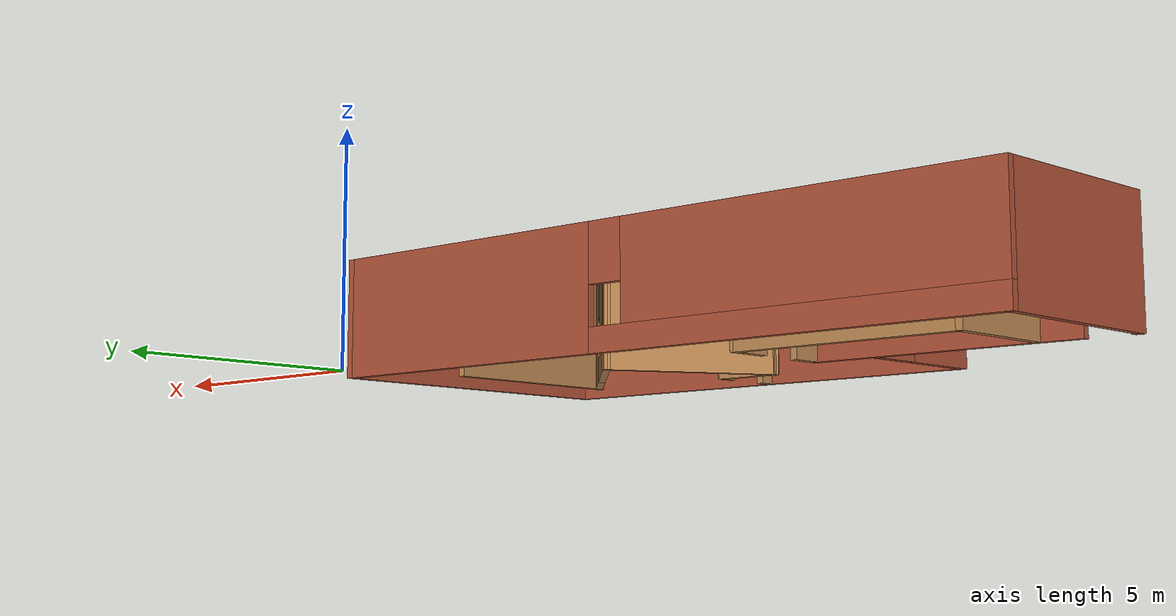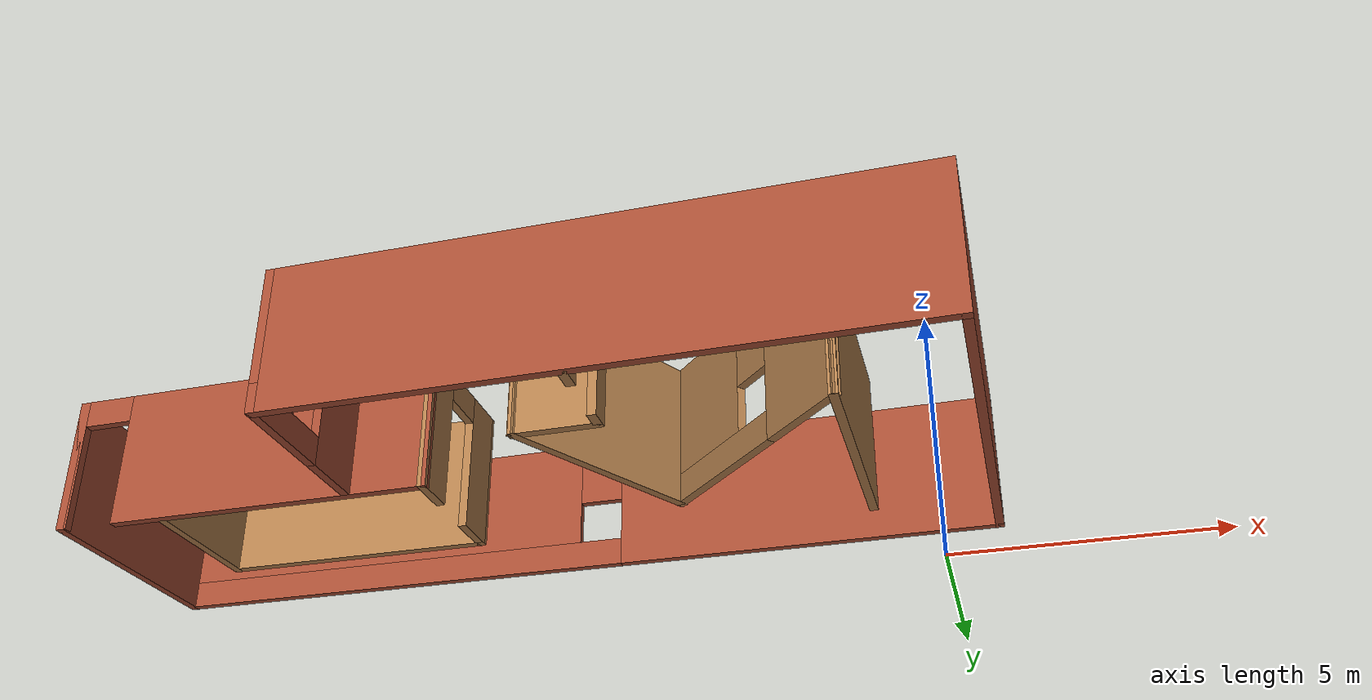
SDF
<?xml version='1.0'?>
<sdf version='1.6'>
  <model name='house'>
    <pose frame=''>-6.8963 -4.67451 0 0 -0 0</pose>
    <link name='Wall_1'>
      <pose frame=''>-2.425 -2.125 0 0 -0 -1.5708</pose>
      <visual name='Wall_1_Visual_0'>
        <pose frame=''>-0.924394 0 1.25 0 -0 0</pose>
        <geometry>
          <box>
            <size>1.15121 0.15 2.5</size>
          </box>
        </geometry>
        <material>
          <script>
            <uri>file://media/materials/scripts/gazebo.material</uri>
            <name>Gazebo/Bricks</name>
          </script>
          <ambient>1 1 1 1</ambient>
        </material>
        <meta>
          <layer>0</layer>
        </meta>
      </visual>
      <collision name='Wall_1_Collision_0'>
        <geometry>
          <box>
            <size>1.15121 0.15 2.5</size>
          </box>
        </geometry>
        <pose frame=''>-0.924394 0 1.25 0 -0 0</pose>
      </collision>
      <visual name='Wall_1_Visual_1'>
        <pose frame=''>0.575606 0 0.25 0 -0 0</pose>
        <geometry>
          <box>
            <size>1.84879 0.15 0.5</size>
          </box>
        </geometry>
        <material>
          <script>
            <uri>file://media/materials/scripts/gazebo.material</uri>
            <name>Gazebo/Bricks</name>
          </script>
          <ambient>1 1 1 1</ambient>
        </material>
        <meta>
          <layer>0</layer>
        </meta>
      </visual>
      <collision name='Wall_1_Collision_1'>
        <geometry>
          <box>
            <size>1.84879 0.15 0.5</size>
          </box>
        </geometry>
        <pose frame=''>0.575606 0 0.25 0 -0 0</pose>
      </collision>
      <visual name='Wall_1_Visual_2'>
        <pose frame=''>0.975606 0 1.5 0 -0 0</pose>
        <geometry>
          <box>
            <size>1.04879 0.15 2</size>
          </box>
        </geometry>
        <material>
          <script>
            <uri>file://media/materials/scripts/gazebo.material</uri>
            <name>Gazebo/Bricks</name>
          </script>
          <ambient>1 1 1 1</ambient>
        </material>
        <meta>
          <layer>0</layer>
        </meta>
      </visual>
      <collision name='Wall_1_Collision_2'>
        <geometry>
          <box>
            <size>1.04879 0.15 2</size>
          </box>
        </geometry>
        <pose frame=''>0.975606 0 1.5 0 -0 0</pose>
      </collision>
      <visual name='Wall_1_Visual_3'>
        <pose frame=''>0.051212 0 1.9 0 -0 0</pose>
        <geometry>
          <box>
            <size>0.8 0.15 1.2</size>
          </box>
        </geometry>
        <material>
          <script>
            <uri>file://media/materials/scripts/gazebo.material</uri>
            <name>Gazebo/Bricks</name>
          </script>
          <ambient>1 1 1 1</ambient>
        </material>
        <meta>
          <layer>0</layer>
        </meta>
      </visual>
      <collision name='Wall_1_Collision_3'>
        <geometry>
          <box>
            <size>0.8 0.15 1.2</size>
          </box>
        </geometry>
        <pose frame=''>0.051212 0 1.9 0 -0 0</pose>
      </collision>
    </link>
    <link name='Wall_13'>
      <pose frame=''>-1.07695 0.690857 0 0 -0 -1.56922</pose>
      <visual name='Wall_13_Visual_0'>
        <pose frame=''>-0.852217 0 1.25 0 -0 0</pose>
        <geometry>
          <box>
            <size>0.927282 0.15 2.5</size>
          </box>
        </geometry>
        <material>
          <script>
            <uri>file://media/materials/scripts/gazebo.material</uri>
            <name>Gazebo/Wood</name>
          </script>
          <ambient>1 1 1 1</ambient>
        </material>
        <meta>
          <layer>0</layer>
        </meta>
      </visual>
      <collision name='Wall_13_Collision_0'>
        <geometry>
          <box>
            <size>0.927282 0.15 2.5</size>
          </box>
        </geometry>
        <pose frame=''>-0.852217 0 1.25 0 -0 0</pose>
      </collision>
      <visual name='Wall_13_Visual_1'>
        <pose frame=''>0.913641 0 1.25 0 -0 0</pose>
        <geometry>
          <box>
            <size>0.804435 0.15 2.5</size>
          </box>
        </geometry>
        <material>
          <script>
            <uri>file://media/materials/scripts/gazebo.material</uri>
            <name>Gazebo/Wood</name>
          </script>
          <ambient>1 1 1 1</ambient>
        </material>
        <meta>
          <layer>0</layer>
        </meta>
      </visual>
      <collision name='Wall_13_Collision_1'>
        <geometry>
          <box>
            <size>0.804435 0.15 2.5</size>
          </box>
        </geometry>
        <pose frame=''>0.913641 0 1.25 0 -0 0</pose>
      </collision>
      <visual name='Wall_13_Visual_2'>
        <pose frame=''>0.061424 0 2.25 0 -0 0</pose>
        <geometry>
          <box>
            <size>0.9 0.15 0.5</size>
          </box>
        </geometry>
        <material>
          <script>
            <uri>file://media/materials/scripts/gazebo.material</uri>
            <name>Gazebo/Wood</name>
          </script>
          <ambient>1 1 1 1</ambient>
        </material>
        <meta>
          <layer>0</layer>
        </meta>
      </visual>
      <collision name='Wall_13_Collision_2'>
        <geometry>
          <box>
            <size>0.9 0.15 0.5</size>
          </box>
        </geometry>
        <pose frame=''>0.061424 0 2.25 0 -0 0</pose>
      </collision>
    </link>
    <link name='Wall_15'>
      <collision name='Wall_15_Collision'>
        <geometry>
          <box>
            <size>4.25 0.15 2.5</size>
          </box>
        </geometry>
        <pose frame=''>0 0 1.25 0 -0 0</pose>
      </collision>
      <visual name='Wall_15_Visual'>
        <pose frame=''>0 0 1.25 0 -0 0</pose>
        <geometry>
          <box>
            <size>4.25 0.15 2.5</size>
          </box>
        </geometry>
        <material>
          <script>
            <uri>file://media/materials/scripts/gazebo.material</uri>
            <name>Gazebo/Wood</name>
          </script>
          <ambient>1 1 1 1</ambient>
        </material>
        <meta>
          <layer>0</layer>
        </meta>
      </visual>
      <pose frame=''>5.90972 0.188689 0 0 -0 -1.5708</pose>
    </link>
    <link name='Wall_16'>
      <pose frame=''>4.37176 -0.323354 0 0 -0 2.35619</pose>
      <visual name='Wall_16_Visual_0'>
        <pose frame=''>-1.39671 0 1.25 0 -0 0</pose>
        <geometry>
          <box>
            <size>1.70657 0.15 2.5</size>
          </box>
        </geometry>
        <material>
          <script>
            <uri>file://media/materials/scripts/gazebo.material</uri>
            <name>Gazebo/Wood</name>
          </script>
          <ambient>1 1 1 1</ambient>
        </material>
        <meta>
          <layer>0</layer>
        </meta>
      </visual>
      <collision name='Wall_16_Collision_0'>
        <geometry>
          <box>
            <size>1.70657 0.15 2.5</size>
          </box>
        </geometry>
        <pose frame=''>-1.39671 0 1.25 0 -0 0</pose>
      </collision>
      <visual name='Wall_16_Visual_1'>
        <pose frame=''>0.853285 0 0.25 0 -0 0</pose>
        <geometry>
          <box>
            <size>2.79343 0.15 0.5</size>
          </box>
        </geometry>
        <material>
          <script>
            <uri>file://media/materials/scripts/gazebo.material</uri>
            <name>Gazebo/Wood</name>
          </script>
          <ambient>1 1 1 1</ambient>
        </material>
        <meta>
          <layer>0</layer>
        </meta>
      </visual>
      <collision name='Wall_16_Collision_1'>
        <geometry>
          <box>
            <size>2.79343 0.15 0.5</size>
          </box>
        </geometry>
        <pose frame=''>0.853285 0 0.25 0 -0 0</pose>
      </collision>
      <visual name='Wall_16_Visual_2'>
        <pose frame=''>1.25328 0 1.5 0 -0 0</pose>
        <geometry>
          <box>
            <size>1.99343 0.15 2</size>
          </box>
        </geometry>
        <material>
          <script>
            <uri>file://media/materials/scripts/gazebo.material</uri>
            <name>Gazebo/Wood</name>
          </script>
          <ambient>1 1 1 1</ambient>
        </material>
        <meta>
          <layer>0</layer>
        </meta>
      </visual>
      <collision name='Wall_16_Collision_2'>
        <geometry>
          <box>
            <size>1.99343 0.15 2</size>
          </box>
        </geometry>
        <pose frame=''>1.25328 0 1.5 0 -0 0</pose>
      </collision>
      <visual name='Wall_16_Visual_3'>
        <pose frame=''>-0.143431 0 1.9 0 -0 0</pose>
        <geometry>
          <box>
            <size>0.8 0.15 1.2</size>
          </box>
        </geometry>
        <material>
          <script>
            <uri>file://media/materials/scripts/gazebo.material</uri>
            <name>Gazebo/Wood</name>
          </script>
          <ambient>1 1 1 1</ambient>
        </material>
        <meta>
          <layer>0</layer>
        </meta>
      </visual>
      <collision name='Wall_16_Collision_3'>
        <geometry>
          <box>
            <size>0.8 0.15 1.2</size>
          </box>
        </geometry>
        <pose frame=''>-0.143431 0 1.9 0 -0 0</pose>
      </collision>
    </link>
    <link name='Wall_17'>
      <collision name='Wall_17_Collision'>
        <geometry>
          <box>
            <size>3.75 0.15 2.5</size>
          </box>
        </geometry>
        <pose frame=''>0 0 1.25 0 -0 0</pose>
      </collision>
      <visual name='Wall_17_Visual'>
        <pose frame=''>0 0 1.25 0 -0 0</pose>
        <geometry>
          <box>
            <size>3.75 0.15 2.5</size>
          </box>
        </geometry>
        <material>
          <script>
            <uri>file://media/materials/scripts/gazebo.material</uri>
            <name>Gazebo/Wood</name>
          </script>
          <ambient>1 1 1 1</ambient>
        </material>
        <meta>
          <layer>0</layer>
        </meta>
      </visual>
      <pose frame=''>1.9338 -0.344242 0 0 -0 -2.0944</pose>
    </link>
    <link name='Wall_18'>
      <collision name='Wall_18_Collision'>
        <geometry>
          <box>
            <size>1.5 0.15 2.5</size>
          </box>
        </geometry>
        <pose frame=''>0 0 1.25 0 -0 0</pose>
      </collision>
      <visual name='Wall_18_Visual'>
        <pose frame=''>0 0 1.25 0 -0 0</pose>
        <geometry>
          <box>
            <size>1.5 0.15 2.5</size>
          </box>
        </geometry>
        <material>
          <script>
            <uri>file://media/materials/scripts/gazebo.material</uri>
            <name>Gazebo/Wood</name>
          </script>
          <ambient>1 1 1 1</ambient>
        </material>
        <meta>
          <layer>0</layer>
        </meta>
      </visual>
      <pose frame=''>1.7088 -1.90309 0 0 -0 0</pose>
    </link>
    <link name='Wall_19'>
      <pose frame=''>2.38381 -2.70309 0 0 -0 -1.5708</pose>
      <visual name='Wall_19_Visual_0'>
        <pose frame=''>-0.669476 0 1.25 0 -0 0</pose>
        <geometry>
          <box>
            <size>0.411048 0.15 2.5</size>
          </box>
        </geometry>
        <material>
          <script>
            <uri>file://media/materials/scripts/gazebo.material</uri>
            <name>Gazebo/Wood</name>
          </script>
          <ambient>1 1 1 1</ambient>
        </material>
        <meta>
          <layer>0</layer>
        </meta>
      </visual>
      <collision name='Wall_19_Collision_0'>
        <geometry>
          <box>
            <size>0.411048 0.15 2.5</size>
          </box>
        </geometry>
        <pose frame=''>-0.669476 0 1.25 0 -0 0</pose>
      </collision>
      <visual name='Wall_19_Visual_1'>
        <pose frame=''>0.655524 0 1.25 0 -0 0</pose>
        <geometry>
          <box>
            <size>0.438952 0.15 2.5</size>
          </box>
        </geometry>
        <material>
          <script>
            <uri>file://media/materials/scripts/gazebo.material</uri>
            <name>Gazebo/Wood</name>
          </script>
          <ambient>1 1 1 1</ambient>
        </material>
        <meta>
          <layer>0</layer>
        </meta>
      </visual>
      <collision name='Wall_19_Collision_1'>
        <geometry>
          <box>
            <size>0.438952 0.15 2.5</size>
          </box>
        </geometry>
        <pose frame=''>0.655524 0 1.25 0 -0 0</pose>
      </collision>
      <visual name='Wall_19_Visual_2'>
        <pose frame=''>-0.013952 0 2.25 0 -0 0</pose>
        <geometry>
          <box>
            <size>0.9 0.15 0.5</size>
          </box>
        </geometry>
        <material>
          <script>
            <uri>file://media/materials/scripts/gazebo.material</uri>
            <name>Gazebo/Wood</name>
          </script>
          <ambient>1 1 1 1</ambient>
        </material>
        <meta>
          <layer>0</layer>
        </meta>
      </visual>
      <collision name='Wall_19_Collision_2'>
        <geometry>
          <box>
            <size>0.9 0.15 0.5</size>
          </box>
        </geometry>
        <pose frame=''>-0.013952 0 2.25 0 -0 0</pose>
      </collision>
    </link>
    <link name='Wall_2'>
      <collision name='Wall_2_Collision'>
        <geometry>
          <box>
            <size>10.5 0.15 2.5</size>
          </box>
        </geometry>
        <pose frame=''>0 0 1.25 0 -0 0</pose>
      </collision>
      <visual name='Wall_2_Visual'>
        <pose frame=''>0 0 1.25 0 -0 0</pose>
        <geometry>
          <box>
            <size>10.5 0.15 2.5</size>
          </box>
        </geometry>
        <material>
          <script>
            <uri>file://media/materials/scripts/gazebo.material</uri>
            <name>Gazebo/Bricks</name>
          </script>
          <ambient>1 1 1 1</ambient>
        </material>
        <meta>
          <layer>0</layer>
        </meta>
      </visual>
      <pose frame=''>2.75 -3.55 0 0 -0 0</pose>
    </link>
    <link name='Wall_3'>
      <collision name='Wall_3_Collision'>
        <geometry>
          <box>
            <size>7.25 0.15 2.5</size>
          </box>
        </geometry>
        <pose frame=''>0 0 1.25 0 -0 0</pose>
      </collision>
      <visual name='Wall_3_Visual'>
        <pose frame=''>0 0 1.25 0 -0 0</pose>
        <geometry>
          <box>
            <size>7.25 0.15 2.5</size>
          </box>
        </geometry>
        <material>
          <script>
            <uri>file://media/materials/scripts/gazebo.material</uri>
            <name>Gazebo/Bricks</name>
          </script>
          <ambient>1 1 1 1</ambient>
        </material>
        <meta>
          <layer>0</layer>
        </meta>
      </visual>
      <pose frame=''>7.925 0 0 0 -0 1.5708</pose>
    </link>
    <link name='Wall_4'>
      <pose frame=''>-0 3.55 0 0 -0 3.14159</pose>
      <visual name='Wall_4_Visual_0'>
        <pose frame=''>-4.53004 0 1.25 0 -0 0</pose>
        <geometry>
          <box>
            <size>6.93992 0.15 2.5</size>
          </box>
        </geometry>
        <material>
          <script>
            <uri>file://media/materials/scripts/gazebo.material</uri>
            <name>Gazebo/Bricks</name>
          </script>
          <ambient>1 1 1 1</ambient>
        </material>
        <meta>
          <layer>0</layer>
        </meta>
      </visual>
      <collision name='Wall_4_Collision_0'>
        <geometry>
          <box>
            <size>6.93992 0.15 2.5</size>
          </box>
        </geometry>
        <pose frame=''>-4.53004 0 1.25 0 -0 0</pose>
      </collision>
      <visual name='Wall_4_Visual_1'>
        <pose frame=''>3.46996 0 0.25 0 -0 0</pose>
        <geometry>
          <box>
            <size>9.06008 0.15 0.5</size>
          </box>
        </geometry>
        <material>
          <script>
            <uri>file://media/materials/scripts/gazebo.material</uri>
            <name>Gazebo/Bricks</name>
          </script>
          <ambient>1 1 1 1</ambient>
        </material>
        <meta>
          <layer>0</layer>
        </meta>
      </visual>
      <collision name='Wall_4_Collision_1'>
        <geometry>
          <box>
            <size>9.06008 0.15 0.5</size>
          </box>
        </geometry>
        <pose frame=''>3.46996 0 0.25 0 -0 0</pose>
      </collision>
      <visual name='Wall_4_Visual_2'>
        <pose frame=''>3.86996 0 1.5 0 -0 0</pose>
        <geometry>
          <box>
            <size>8.26008 0.15 2</size>
          </box>
        </geometry>
        <material>
          <script>
            <uri>file://media/materials/scripts/gazebo.material</uri>
            <name>Gazebo/Bricks</name>
          </script>
          <ambient>1 1 1 1</ambient>
        </material>
        <meta>
          <layer>0</layer>
        </meta>
      </visual>
      <collision name='Wall_4_Collision_2'>
        <geometry>
          <box>
            <size>8.26008 0.15 2</size>
          </box>
        </geometry>
        <pose frame=''>3.86996 0 1.5 0 -0 0</pose>
      </collision>
      <visual name='Wall_4_Visual_3'>
        <pose frame=''>-0.660078 0 1.9 0 -0 0</pose>
        <geometry>
          <box>
            <size>0.8 0.15 1.2</size>
          </box>
        </geometry>
        <material>
          <script>
            <uri>file://media/materials/scripts/gazebo.material</uri>
            <name>Gazebo/Bricks</name>
          </script>
          <ambient>1 1 1 1</ambient>
        </material>
        <meta>
          <layer>0</layer>
        </meta>
      </visual>
      <collision name='Wall_4_Collision_3'>
        <geometry>
          <box>
            <size>0.8 0.15 1.2</size>
          </box>
        </geometry>
        <pose frame=''>-0.660078 0 1.9 0 -0 0</pose>
      </collision>
    </link>
    <link name='Wall_5'>
      <collision name='Wall_5_Collision'>
        <geometry>
          <box>
            <size>4.25 0.15 2.5</size>
          </box>
        </geometry>
        <pose frame=''>0 0 1.25 0 -0 0</pose>
      </collision>
      <visual name='Wall_5_Visual'>
        <pose frame=''>0 0 1.25 0 -0 0</pose>
        <geometry>
          <box>
            <size>4.25 0.15 2.5</size>
          </box>
        </geometry>
        <material>
          <script>
            <uri>file://media/materials/scripts/gazebo.material</uri>
            <name>Gazebo/Bricks</name>
          </script>
          <ambient>1 1 1 1</ambient>
        </material>
        <meta>
          <layer>0</layer>
        </meta>
      </visual>
      <pose frame=''>-7.925 1.5 0 0 -0 -1.5708</pose>
    </link>
    <link name='Wall_6'>
      <pose frame=''>-4.5 -0.55 0 0 -0 0</pose>
      <visual name='Wall_6_Visual_0'>
        <pose frame=''>-3.40348 0 1.25 0 -0 0</pose>
        <geometry>
          <box>
            <size>0.193029 0.15 2.5</size>
          </box>
        </geometry>
        <material>
          <script>
            <uri>file://media/materials/scripts/gazebo.material</uri>
            <name>Gazebo/Bricks</name>
          </script>
          <ambient>1 1 1 1</ambient>
        </material>
        <meta>
          <layer>0</layer>
        </meta>
      </visual>
      <collision name='Wall_6_Collision_0'>
        <geometry>
          <box>
            <size>0.193029 0.15 2.5</size>
          </box>
        </geometry>
        <pose frame=''>-3.40348 0 1.25 0 -0 0</pose>
      </collision>
      <visual name='Wall_6_Visual_1'>
        <pose frame=''>0.546515 0 1.25 0 -0 0</pose>
        <geometry>
          <box>
            <size>5.90697 0.15 2.5</size>
          </box>
        </geometry>
        <material>
          <script>
            <uri>file://media/materials/scripts/gazebo.material</uri>
            <name>Gazebo/Bricks</name>
          </script>
          <ambient>1 1 1 1</ambient>
        </material>
        <meta>
          <layer>0</layer>
        </meta>
      </visual>
      <collision name='Wall_6_Collision_1'>
        <geometry>
          <box>
            <size>5.90697 0.15 2.5</size>
          </box>
        </geometry>
        <pose frame=''>0.546515 0 1.25 0 -0 0</pose>
      </collision>
      <visual name='Wall_6_Visual_2'>
        <pose frame=''>-2.85697 0 2.25 0 -0 0</pose>
        <geometry>
          <box>
            <size>0.9 0.15 0.5</size>
          </box>
        </geometry>
        <material>
          <script>
            <uri>file://media/materials/scripts/gazebo.material</uri>
            <name>Gazebo/Bricks</name>
          </script>
          <ambient>1 1 1 1</ambient>
        </material>
        <meta>
          <layer>0</layer>
        </meta>
      </visual>
      <collision name='Wall_6_Collision_2'>
        <geometry>
          <box>
            <size>0.9 0.15 0.5</size>
          </box>
        </geometry>
        <pose frame=''>-2.85697 0 2.25 0 -0 0</pose>
      </collision>
    </link>
    <link name='Wall_8'>
      <collision name='Wall_8_Collision'>
        <geometry>
          <box>
            <size>2.5 0.15 2.5</size>
          </box>
        </geometry>
        <pose frame=''>0 0 1.25 0 -0 0</pose>
      </collision>
      <visual name='Wall_8_Visual'>
        <pose frame=''>0 0 1.25 0 -0 0</pose>
        <geometry>
          <box>
            <size>2.5 0.15 2.5</size>
          </box>
        </geometry>
        <material>
          <script>
            <uri>file://media/materials/scripts/gazebo.material</uri>
            <name>Gazebo/Wood</name>
          </script>
          <ambient>1 1 1 1</ambient>
        </material>
        <meta>
          <layer>0</layer>
        </meta>
      </visual>
      <pose frame=''>-5.96913 0.756714 0 0 -0 1.5708</pose>
    </link>
    <link name='Wall_9'>
      <collision name='Wall_9_Collision'>
        <geometry>
          <box>
            <size>5.04023 0.15 2.5</size>
          </box>
        </geometry>
        <pose frame=''>0 0 1.25 0 -0 0</pose>
      </collision>
      <visual name='Wall_9_Visual'>
        <pose frame=''>0 0 1.25 0 -0 0</pose>
        <geometry>
          <box>
            <size>5.04023 0.15 2.5</size>
          </box>
        </geometry>
        <material>
          <script>
            <uri>file://media/materials/scripts/gazebo.material</uri>
            <name>Gazebo/Wood</name>
          </script>
          <ambient>1 1 1 1</ambient>
        </material>
        <meta>
          <layer>0</layer>
        </meta>
      </visual>
      <pose frame=''>-3.52402 1.93171 0 0 -0 0</pose>
    </link>
    <static>1</static>
  </model>
</sdf>
